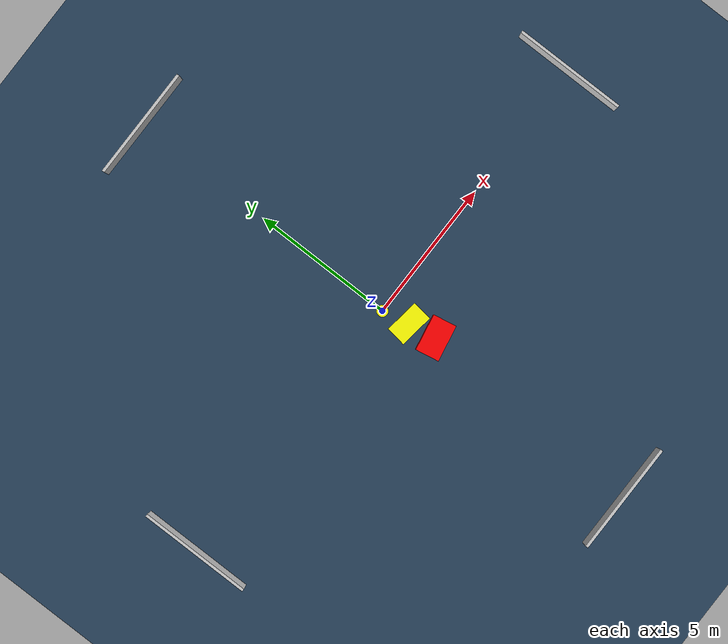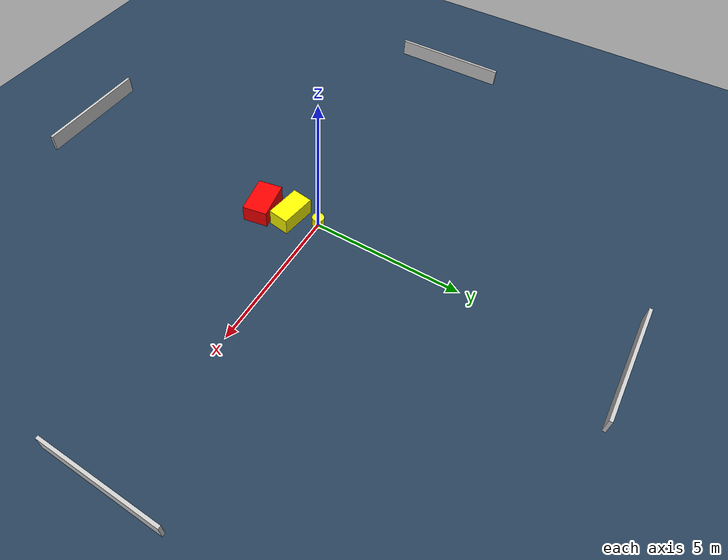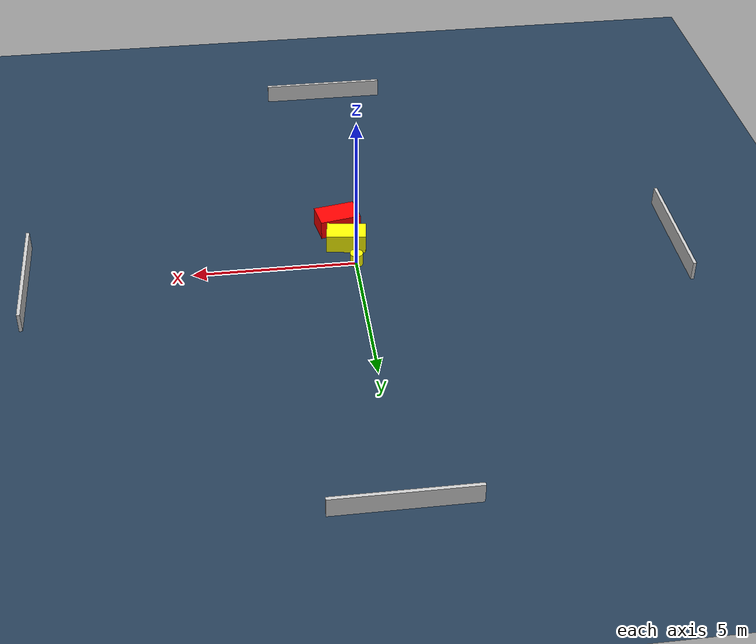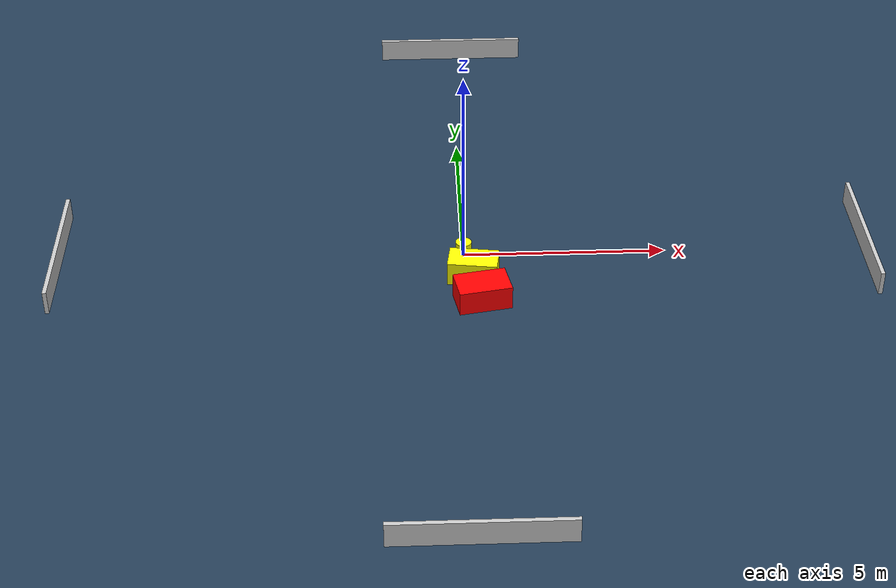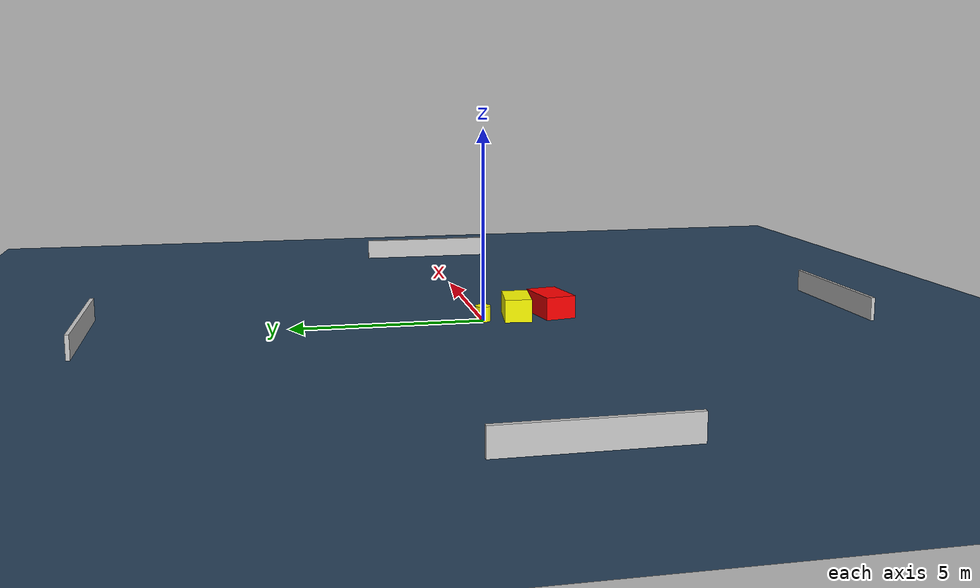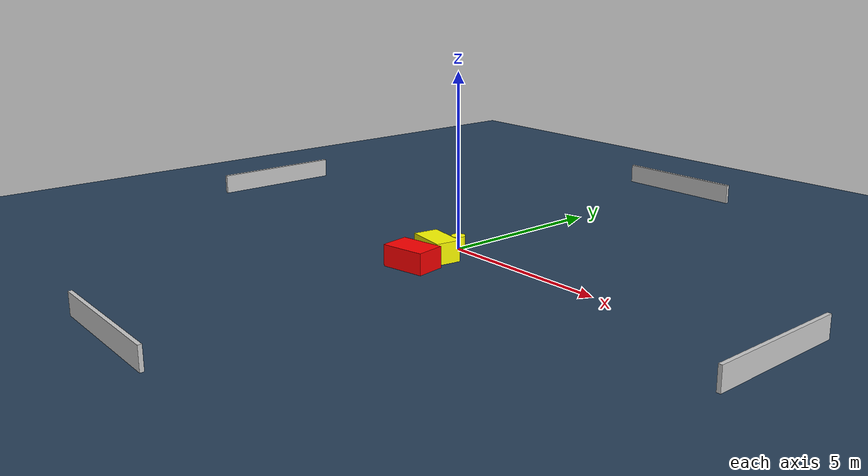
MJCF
<?xml version="1.0" ?>
<mujoco model="generated_environment">
  <option timestep="0.01" integrator="RK4" cone="elliptic"/>
  <default>
    <geom density="1"/>
  </default>
  <asset>
    <texture builtin="gradient" height="3072" name="skybox" rgb1="0.3 0.5 0.7" rgb2="0 0 0" type="skybox" width="512"/>
    <texture builtin="checker" height="300" name="groundplane" rgb1="0.2 0.3 0.4" rgb2="0.1 0.2 0.3" type="2d" width="300"/>
    <material name="groundplane" reflectance="0.2" texrepeat="5 5" texture="groundplane"/>
  </asset>
  <worldbody>
    <light dir="0 0 -1" directional="true" pos="0 0 1.5"/>
    <geom condim="3" friction="0.5 0.005 0.001" material="groundplane" name="floor" pos="0 0 0" size="0 0 0.05" type="plane"/>
    <body name="walls">
      <geom name="wall_1" condim="4" pos="-10.0 0.0 0.3" rgba="0.800000011920929 0.800000011920929 0.800000011920929 1.0" size="0.05 2.0 0.3" type="box"/>
      <geom name="wall_2" condim="4" pos="10.0 0.0 0.3" rgba="0.800000011920929 0.800000011920929 0.800000011920929 1.0" size="0.05 2.0 0.3" type="box"/>
      <geom name="wall_3" condim="4" pos="0.0 -10.0 0.3" rgba="0.800000011920929 0.800000011920929 0.800000011920929 1.0" size="2.0 0.05 0.3" type="box"/>
      <geom name="wall_4" condim="4" pos="0.0 10.0 0.3" rgba="0.800000011920929 0.800000011920929 0.800000011920929 1.0" size="2.0 0.05 0.3" type="box"/>
    </body>
    <body name="robot">
      <joint name="joint_x" type="slide" pos="0 0 0" axis="1 0 0"/>
      <joint name="joint_y" type="slide" pos="0 0 0" axis="0 1 0"/>
      <geom name="robot" type="cylinder" pos="0.0 0.0 0.2" size="0.2 0.2 0.0" mass="5.0" friction="1.0 0.005 0.0001" condim="4" rgba="1.0 1.0 0.0 1.0"/>
    </body>
    <body name="obstacle_1_movable">
      <geom name="obstacle_1_movable" condim="4" pos="0.20284281576143517 -0.9418676669058894 0.3" euler="0 0 262.0799310265268" friction="0.0 0.005 0.001" rgba="1.0 1.0 0.0 1.0" size="0.3522481502574526 0.607445306208536 0.3" type="box" mass="0.1"/>
      <joint type="free"/>
    </body>
    <body name="obstacle_2_static">
      <geom name="obstacle_2_static" condim="4" pos="0.37827895858668004 -1.9247704540046866 0.3" euler="0 0 10.540553803268988" friction="0.0 0.005 0.001" rgba="1.0 0.0 0.0 1.0" size="0.6435970834344868 0.4141668836622871 0.3" type="box"/>
    </body>
  </worldbody>
  <actuator>
    <motor name="actuator_x" joint="joint_x" gear="1" ctrlrange="-1 1"/>
    <motor name="actuator_y" joint="joint_y" gear="1" ctrlrange="-1 1"/>
  </actuator>
</mujoco>
